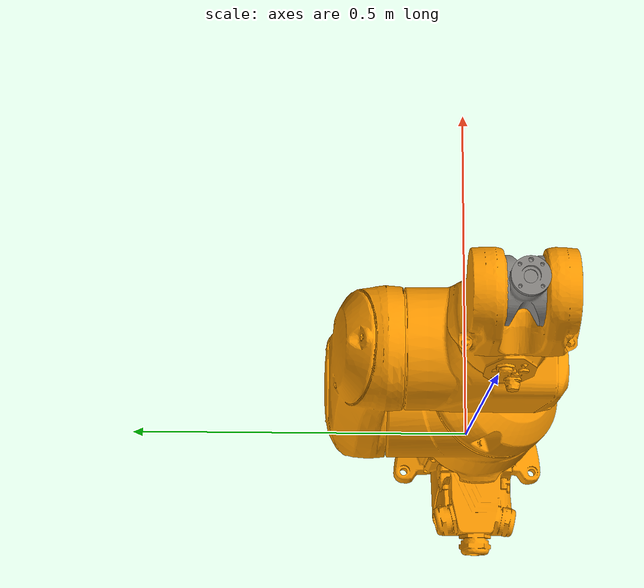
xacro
<?xml version="1.0" ?>
<!-- |    This document was autogenerated by xacro from /home/parallels/catkin_ws/src/staubli_tx2_60_support/urdf/tx2_60.xacro | -->
<!-- |    EDITING THIS FILE BY HAND IS NOT RECOMMENDED                                 | -->
<robot name="staubli_tx2_60">
    <!-- colours based on RAL values supplied by Staubli -->
    <!-- all RAL colours converted using http://www.visual-graphics.de/en/customer-care/ral-colours -->
    <!-- default colours for robots -->
    <!-- links: main serial chain -->
    <link name="base_link">
        <visual>
            <origin rpy="0 0 0" xyz="0 0 0" />
            <geometry>
                <mesh filename="package://staubli_tx2_60_support/meshes/tx2_60/visual/base_link.stl" />
            </geometry>
            <material name="">
                <color rgba="1.0 0.6078431372549019 0.0 1.0" />
            </material>
        </visual>
        <collision>
            <origin rpy="0 0 0" xyz="0 0 0" />
            <geometry>
                <mesh filename="package://staubli_tx2_60_support/meshes/tx2_60/collision/base_link.stl" />
            </geometry>
        </collision>

<inertial>
            <mass value="0.1" />
            <inertia ixx="0.03" iyy="0.03" izz="0.03" ixy="0.0" ixz="0.0" iyz="0.0" />
        </inertial>

    </link>
    <link name="link_1">
        <visual>
            <origin rpy="0 0 0" xyz="0 0 0" />
            <geometry>
                <mesh filename="package://staubli_tx2_60_support/meshes/tx2_60/visual/link_1.stl" />
            </geometry>
            <material name="">
                <color rgba="1.0 0.6078431372549019 0.0 1.0" />
            </material>
        </visual>
        <collision>
            <origin rpy="0 0 0" xyz="0 0 0" />
            <geometry>
                <mesh filename="package://staubli_tx2_60_support/meshes/tx2_60/collision/link_1.stl" />
            </geometry>
        </collision>

<inertial>
            <mass value="0.1" />
            <inertia ixx="0.03" iyy="0.03" izz="0.03" ixy="0.0" ixz="0.0" iyz="0.0" />
        </inertial>

    </link>
    <link name="link_2">
        <visual>
            <origin rpy="0 0 0" xyz="0 0 0" />
            <geometry>
                <mesh filename="package://staubli_tx2_60_support/meshes/tx2_60/visual/link_2.stl" />
            </geometry>
            <material name="">
                <color rgba="1.0 0.6078431372549019 0.0 1.0" />
            </material>
        </visual>
        <collision>
            <origin rpy="0 0 0" xyz="0 0 0" />
            <geometry>
                <mesh filename="package://staubli_tx2_60_support/meshes/tx2_60/collision/link_2.stl" />
            </geometry>
        </collision>

<inertial>
            <mass value="0.1" />
            <inertia ixx="0.03" iyy="0.03" izz="0.03" ixy="0.0" ixz="0.0" iyz="0.0" />
        </inertial>

    </link>
    <link name="link_3">
        <visual>
            <origin rpy="0 0 0" xyz="0 0 0" />
            <geometry>
                <mesh filename="package://staubli_tx2_60_support/meshes/tx2_60/visual/link_3.stl" />
            </geometry>
            <material name="">
                <color rgba="1.0 0.6078431372549019 0.0 1.0" />
            </material>
        </visual>
        <collision>
            <origin rpy="0 0 0" xyz="0 0 0" />
            <geometry>
                <mesh filename="package://staubli_tx2_60_support/meshes/tx2_60/collision/link_3.stl" />
            </geometry>
        </collision>

<inertial>
            <mass value="0.1" />
            <inertia ixx="0.03" iyy="0.03" izz="0.03" ixy="0.0" ixz="0.0" iyz="0.0" />
        </inertial>

    </link>
    <link name="link_4">
        <visual>
            <origin rpy="0 0 0" xyz="0 0 0" />
            <geometry>
                <mesh filename="package://staubli_tx2_60_support/meshes/tx2_60/visual/link_4.stl" />
            </geometry>
            <material name="">
                <color rgba="1.0 0.6078431372549019 0.0 1.0" />
            </material>
        </visual>
        <collision>
            <origin rpy="0 0 0" xyz="0 0 0" />
            <geometry>
                <mesh filename="package://staubli_tx2_60_support/meshes/tx2_60/collision/link_4.stl" />
            </geometry>
        </collision>

<inertial>
            <mass value="0.1" />
            <inertia ixx="0.03" iyy="0.03" izz="0.03" ixy="0.0" ixz="0.0" iyz="0.0" />
        </inertial>

    </link>
    <link name="link_5">
        <visual>
            <origin rpy="0 0 0" xyz="0 0 0" />
            <geometry>
                <mesh filename="package://staubli_tx60_support/meshes/tx60/visual/link_5.stl" />
            </geometry>
            <material name="">
                <color rgba="0.5294117647058824 0.5215686274509804 0.5058823529411764 1.0" />
            </material>
        </visual>
        <collision>
            <origin rpy="0 0 0" xyz="0 0 0" />
            <geometry>
                <mesh filename="package://staubli_tx60_support/meshes/tx60/collision/link_5.stl" />
            </geometry>
        </collision>

<inertial>
            <mass value="0.1" />
            <inertia ixx="0.03" iyy="0.03" izz="0.03" ixy="0.0" ixz="0.0" iyz="0.0" />
        </inertial>

    </link>
    <link name="link_6">
        <visual>
            <origin rpy="0 0 0" xyz="0 0 0" />
            <geometry>
                <mesh filename="package://staubli_tx60_support/meshes/tx60/visual/link_6.stl" />
            </geometry>
            <material name="">
                <color rgba="0.5294117647058824 0.5215686274509804 0.5058823529411764 1.0" />
            </material>
        </visual>
        <collision>
            <origin rpy="0 0 0" xyz="0 0 0" />
            <geometry>
                <mesh filename="package://staubli_tx60_support/meshes/tx60/collision/link_6.stl" />
            </geometry>
        </collision>

<inertial>
            <mass value="0.1" />
            <inertia ixx="0.03" iyy="0.03" izz="0.03" ixy="0.0" ixz="0.0" iyz="0.0" />
        </inertial>

    </link>
    <!-- Used for fixing robot to Gazebo 'base_link' -->
    <link name="world"/>
    <joint name="fixed" type="fixed">
      <parent link="world"/>
      <child link="base_link"/>
    </joint>
    <!-- joints: main serial chain -->
    <joint name="joint_1" type="revolute">
        <origin rpy="0 0 0" xyz="0 0 0.375" />
        <parent link="base_link" />
        <child link="link_1" />
        <axis xyz="0 0 1" />
        <!-- from Staubli instruction manual:
      (1) effort limit = 126 Nm if floor mounted
      (2) effort limit = 40 Nm if wall mounted -->
        <!-- nominal velocity limits are used -->
        <limit effort="126.0" lower="-2.141592653589793" upper="2.141592653589793" velocity="7.592182246175334" />
    </joint>
    <joint name="joint_2" type="revolute">
        <origin rpy="0 0 0" xyz="0 0 0" />
        <parent link="link_1" />
        <child link="link_2" />
        <axis xyz="0 1 0" />
        <!-- nominal velocity limits are used -->
        <limit effort="47.0" lower="-2.2252947962927703" upper="2.2252947962927703" velocity="6.719517620178169" />
    </joint>
    <joint name="joint_3" type="revolute">
        <origin rpy="0 0 0" xyz="0 0.02 0.29" />
        <parent link="link_2" />
        <child link="link_3" />
        <axis xyz="0 1 0" />
        <!-- nominal velocity limits are used -->
        <limit effort="32.0" lower="-2.6616271092913526" upper="2.6616271092913526" velocity="8.726646259971648" />
    </joint>
    <joint name="joint_4" type="revolute">
        <origin rpy="0 0 0" xyz="0 0 0" />
        <parent link="link_3" />
        <child link="link_4" />
        <axis xyz="0 0 1" />
        <!-- nominal velocity limits are used -->
        <limit effort="25.0" lower="-0.52238898038469" upper="1.92238898038469" velocity="17.36602605734358" />
    </joint>
    <joint name="joint_5" type="revolute">
        <origin rpy="0 0 0" xyz="0 0 0.31" />
        <parent link="link_4" />
        <child link="link_5" />
        <axis xyz="0 1 0" />
        <!-- nominal velocity limits are used -->
        <limit effort="8.0" lower="-2.111848394913139" upper="2.3125612588924866" velocity="18.58775653373961" />
    </joint>
    <joint name="joint_6" type="revolute">
        <origin rpy="0 0 0" xyz="0 0 0.07" />
        <parent link="link_5" />
        <child link="link_6" />
        <axis xyz="0 0 1" />
        <!-- nominal velocity limits are used -->
        <limit effort="2.0" lower="-4.71238898038469" upper="4.71238898038469" velocity="25.220007691318063" />
    </joint>
    <!-- ROS-Industrial 'base' frame: base_link to Staubli World Coordinates transform -->
    <link name="base" />
    <joint name="base_link-base" type="fixed">
        <origin rpy="0 0 0" xyz="0 0 0.375" />
        <parent link="base_link" />
        <child link="base" />
    </joint>
    <!-- ROS-Industrial 'flange' frame: attachment point for EEF models -->
    <link name="flange" />
    <joint name="joint_6-flange" type="fixed">
        <origin rpy="0 -1.5707963267948966 0" xyz="0 0 0" />
        <parent link="link_6" />
        <child link="flange" />
    </joint>
    <!-- ROS-Industrial 'tool0' frame: all-zeros tool frame -->
    <link name="tool0" />
    <joint name="flange-tool0" type="fixed">
        <origin rpy="0 1.5707963267948966 0" xyz="0 0 0" />
        <parent link="flange" />
        <child link="tool0" />
    </joint>

<transmission name="trans_joint_1">
        <type>transmission_interface/SimpleTransmission</type>
        <joint name="joint_1">
            <hardwareInterface>hardware_interface/PositionJointInterface</hardwareInterface>
        </joint>
        <actuator name="joint_1_motor">
            <hardwareInterface>hardware_interface/PositionJointInterface</hardwareInterface>
            <mechanicalReduction>1</mechanicalReduction>
        </actuator>
    </transmission>
    <transmission name="trans_joint_2">
        <type>transmission_interface/SimpleTransmission</type>
        <joint name="joint_2">
            <hardwareInterface>hardware_interface/PositionJointInterface</hardwareInterface>
        </joint>
        <actuator name="joint_2_motor">
            <hardwareInterface>hardware_interface/PositionJointInterface</hardwareInterface>
            <mechanicalReduction>1</mechanicalReduction>
        </actuator>
    </transmission>
    <transmission name="trans_joint_3">
        <type>transmission_interface/SimpleTransmission</type>
        <joint name="joint_3">
            <hardwareInterface>hardware_interface/PositionJointInterface</hardwareInterface>
        </joint>
        <actuator name="joint_3_motor">
            <hardwareInterface>hardware_interface/PositionJointInterface</hardwareInterface>
            <mechanicalReduction>1</mechanicalReduction>
        </actuator>
    </transmission>
    <transmission name="trans_joint_4">
        <type>transmission_interface/SimpleTransmission</type>
        <joint name="joint_4">
            <hardwareInterface>hardware_interface/PositionJointInterface</hardwareInterface>
        </joint>
        <actuator name="joint_4_motor">
            <hardwareInterface>hardware_interface/PositionJointInterface</hardwareInterface>
            <mechanicalReduction>1</mechanicalReduction>
        </actuator>
    </transmission>
    <transmission name="trans_joint_5">
        <type>transmission_interface/SimpleTransmission</type>
        <joint name="joint_5">
            <hardwareInterface>hardware_interface/PositionJointInterface</hardwareInterface>
        </joint>
        <actuator name="joint_5_motor">
            <hardwareInterface>hardware_interface/PositionJointInterface</hardwareInterface>
            <mechanicalReduction>1</mechanicalReduction>
        </actuator>
    </transmission>
    <transmission name="trans_joint_6">
        <type>transmission_interface/SimpleTransmission</type>
        <joint name="joint_6">
            <hardwareInterface>hardware_interface/PositionJointInterface</hardwareInterface>
        </joint>
        <actuator name="joint_6_motor">
            <hardwareInterface>hardware_interface/PositionJointInterface</hardwareInterface>
            <mechanicalReduction>1</mechanicalReduction>
        </actuator>
    </transmission>
    <gazebo>
        <plugin name="gazebo_ros_control" filename="libgazebo_ros_control.so">
            <robotNamespace>/</robotNamespace>
        </plugin>
    </gazebo>
</robot>
